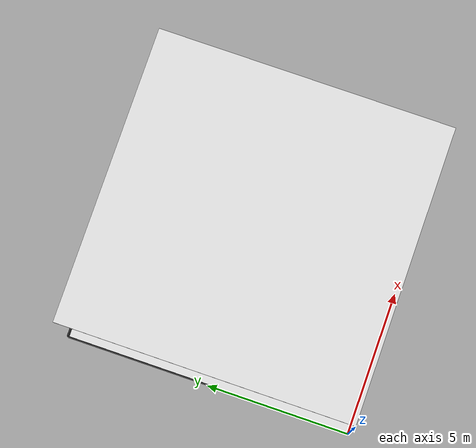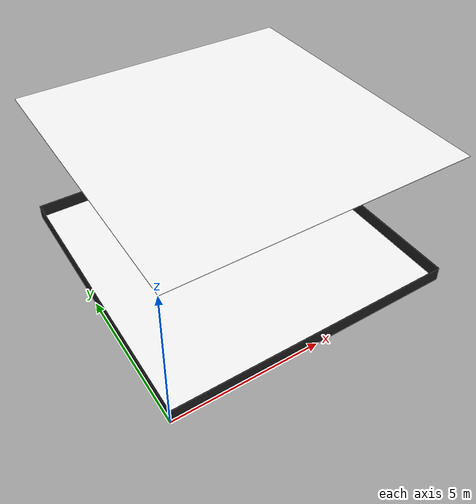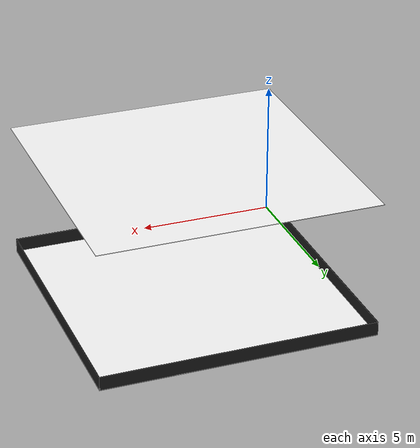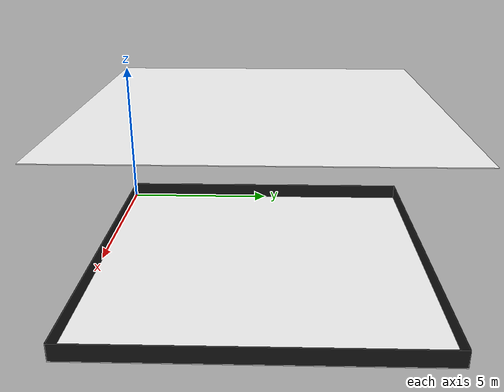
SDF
<?xml version="1.0" ?>
<sdf version="1.6">
  <world name="vlp_room_world">

    <!-- Restrict ambient illumination to isolate VLP emitting sources -->
    <scene>
      <ambient>1  1  1 1</ambient>
      <background>0 0 0 1</background>
      <shadows>true</shadows>
    </scene>

    <!-- Room Envelope Without Walls (10m x 10m x 5m) -->
    <model name="room_10x10x5">
      <static>true</static>
      <pose>5.0 5.0 0 0 0 0</pose>
      <link name="structure">
        <!-- Ceiling and Floor -->
        <visual name="ceiling_visual">
          <pose>0 0 5.01 0 0 0</pose>
          <geometry><box><size>10 10 0.02</size></box></geometry>
          <material>
            <ambient>1 1 1 1</ambient>
            <diffuse>1 1 1 1</diffuse>
          </material>
        </visual>
        <collision name="ceiling_collision">
          <pose>0 0 5.01 0 0 0</pose>
          <geometry><box><size>10 10 0.02</size></box></geometry>
        </collision>

        <visual name="floor_visual">
          <pose>0 0 -0.01 0 0 0</pose>
          <geometry><box><size>10 10 0.02</size></box></geometry>
          <material>
            <ambient>1 1 1 1</ambient>
            <diffuse>1 1 1 1</diffuse>
          </material>
        </visual>
        <collision name="floor_collision">
          <pose>0 0 -0.01 0 0 0</pose>
          <geometry><box><size>10 10 0.02</size></box></geometry>
        </collision>

        <!-- Boundary walls to show limits (50 cm height) -->
        <visual name="boundary_north_visual">
          <pose>4.99 0 0.25 0 0 0</pose>
          <geometry><box><size>0.02 10 0.5</size></box></geometry>
          <material><ambient>0.1 0.1 0.1 1</ambient></material>
        </visual>
        <collision name="boundary_north_collision">
          <pose>4.99 0 0.25 0 0 0</pose>
          <geometry><box><size>0.02 10 0.5</size></box></geometry>
        </collision>

        <visual name="boundary_south_visual">
          <pose>-4.99 0 0.25 0 0 0</pose>
          <geometry><box><size>0.02 10 0.5</size></box></geometry>
          <material><ambient>0.1 0.1 0.1 1</ambient></material>
        </visual>
        <collision name="boundary_south_collision">
          <pose>-4.99 0 0.25 0 0 0</pose>
          <geometry><box><size>0.02 10 0.5</size></box></geometry>
        </collision>

        <visual name="boundary_east_visual">
          <pose>0 4.99 0.25 0 0 0</pose>
          <geometry><box><size>10 0.02 0.5</size></box></geometry>
          <material><ambient>0.1 0.1 0.1 1</ambient></material>
        </visual>
        <collision name="boundary_east_collision">
          <pose>0 4.99 0.25 0 0 0</pose>
          <geometry><box><size>10 0.02 0.5</size></box></geometry>
        </collision>

        <visual name="boundary_west_visual">
          <pose>0 -4.99 0.25 0 0 0</pose>
          <geometry><box><size>10 0.02 0.5</size></box></geometry>
          <material><ambient>0.1 0.1 0.1 1</ambient></material>
        </visual>
        <collision name="boundary_west_collision">
          <pose>0 -4.99 0.25 0 0 0</pose>
          <geometry><box><size>10 0.02 0.5</size></box></geometry>
        </collision>

        <!-- Grid plane aligned with the floor top surface -->
        <visual name="grid_visual">
          <pose>0 0 0.001 0 0 0</pose>
          <geometry><plane><normal>0 0 1</normal><size>10 10</size></plane></geometry>
          <material>
            <script>
              <uri>file://media/materials/scripts/gazebo.material</uri>
              <name>Gazebo/GrayGrid</name>
            </script>
          </material>
        </visual>

      </link>
    </model>

    <include>
        <name>luminaire_1</name>
        <uri>model://ledTube</uri>
        <pose>2.0 2.5 4.8 1.5708 0 0</pose>
      </include>

      <include>
        <name>luminaire_2</name>
        <uri>model://ledTube</uri>
        <pose>4.0 2.5 4.8 1.5708 0 0</pose>
      </include>

      <include>
        <name>luminaire_3</name>
        <uri>model://ledTube</uri>
        <pose>6.0 2.5 4.8 1.5708 0 0</pose>
      </include>

      <include>
        <name>luminaire_4</name>
        <uri>model://ledTube</uri>
        <pose>8.0 2.5 4.8 1.5708 0 0</pose>
      </include>

      <include>
        <name>luminaire_5</name>
        <uri>model://ledTube</uri>
        <pose>2.0 5.0 4.8 1.5708 0 0</pose>
      </include>

      <include>
        <name>luminaire_6</name>
        <uri>model://ledTube</uri>
        <pose>4.0 5.0 4.8 1.5708 0 0</pose>
      </include>

      <include>
        <name>luminaire_7</name>
        <uri>model://ledTube</uri>
        <pose>6.0 5.0 4.8 1.5708 0 0</pose>
      </include>

      <include>
        <name>luminaire_8</name>
        <uri>model://ledTube</uri>
        <pose>8.0 5.0 4.8 1.5708 0 0</pose>
      </include>

      <include>
        <name>luminaire_9</name>
        <uri>model://ledTube</uri>
        <pose>2.0 7.5 4.8 1.5708 0 0</pose>
      </include>

      <include>
        <name>luminaire_10</name>
        <uri>model://ledTube</uri>
        <pose>4.0 7.5 4.8 1.5708 0 0</pose>
      </include>

      <include>
        <name>luminaire_11</name>
        <uri>model://ledTube</uri>
        <pose>6.0 7.5 4.8 1.5708 0 0</pose>
      </include>

      <include>
        <name>luminaire_12</name>
        <uri>model://ledTube</uri>
        <pose>8.0 7.5 4.8 1.5708 0 0</pose>
      </include>

  </world>
</sdf>

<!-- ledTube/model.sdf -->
<sdf version="1.6">
  <model name="ledTube">
    <static>true</static>
    <link name="base_link">
      <!-- Main tube as rectangle box -->
      <visual name="tube_visual">
        <geometry>
          <box>
            <size>0.30 0.15  1.505</size>
          </box>
        </geometry>
        <material>
          <ambient>0.7 0.7 0.7 1.0</ambient>
          <diffuse>0.9 0.9 0.9 1.0</diffuse>
          <specular>0.9 0.9 0.9 1.0</specular>
        </material>
      </visual>

      <!-- Collision for main tube -->
      <collision name="tube_collision">
        <geometry>
          <box>
            <size> 0.30 0.15  1.505</size>
          </box>
        </geometry>
      </collision>

      <!-- Inertia properties -->
      <inertial>
        <mass>5.0</mass>
        <inertia>
          <ixx>0.5</ixx>
          <ixy>0.0</ixy>
          <ixz>0.0</ixz>
          <iyy>0.5</iyy>
          <iyz>0.0</iyz>
          <izz>0.1</izz>
        </inertia>
      </inertial>
    </link>
  </model>
</sdf>
